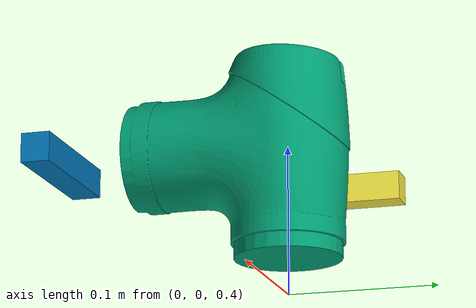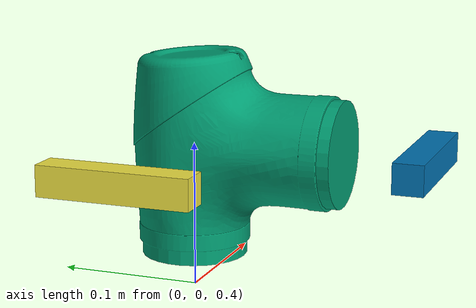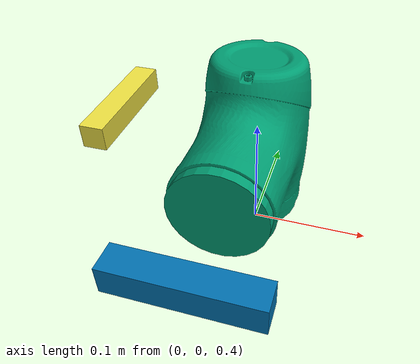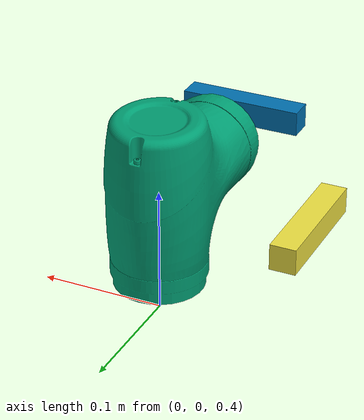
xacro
<robot
  name="elfin3" xmlns:xacro="http://www.ros.org/wiki/xacro">

  <xacro:include filename="$(find elfin_description)/urdf/materials.xacro" />

  <xacro:include filename="$(find elfin_description)/urdf/modules/modules.gazebo" />

  <xacro:include filename="$(find elfin_description)/urdf/modules/modules_transmission.xacro" />

  <xacro:property name="PI" value="3.1415926535897931"/>

  <xacro:property name="density" value="3.09"/>

  <link name="world"/>

  <joint name="world_base" type="fixed">
    <origin
      xyz="0 0 0"
      rpy="0 0 0" />
    <parent
      link="world" />
    <child
      link="elfin_base" />
  </joint>

  <link name="elfin_base"/>

  <joint name="elfin_module_base_joint" type="fixed">
    <origin
      xyz="0 0 0.5"
      rpy="0 0 0" />
    <parent
      link="elfin_base" />
    <child
      link="elfin_module_14" />
  </joint>

  <link
    name="elfin_module_14">
    <inertial>
      <origin
        xyz="-0.0158710385319 -0.0365214098995 4.94388107361e-07"
        rpy="0 0 0"/>
      <mass value="${0.807027243448*density}"/>
      <inertia
      ixx="${0.00193719*density}" ixy="${0.00047145*density}" ixz="${2e-08*density}"
      iyy="${0.00112857*density}" iyz="${-1.1e-07*density}"
      izz="${0.00245655*density}"/>
    </inertial>
    <visual>
      <origin
        xyz="0 0 0"
        rpy="0 0 0" />
      <geometry>
        <mesh
          filename="package://elfin_description/meshes/elfin3/elfin_link5.STL" />
      </geometry>
      <material
        name="metal"/>
    </visual>
    <collision>
      <origin
        xyz="0 0 0"
        rpy="0 0 0" />
      <geometry>
        <mesh
          filename="package://elfin_description/meshes/elfin3/elfin_link5.STL" />
      </geometry>
    </collision>
  </link>

  <link name="dummy_link1">
    <inertial>
      <origin
        xyz="0 0 0"
        rpy="0 0 0"/>
      <mass value="0.01"/>
      <inertia
      ixx="0.0001" ixy="0" ixz="0"
      iyy="0.0001" iyz="0"
      izz="0.0001"/>
    </inertial>

    <visual>
      <origin xyz="0 0 0" rpy="0 0 0"/>
      <geometry>
	<box size="0.02 0.1 0.02"/>
      </geometry>
      <material name="metal"/>
    </visual>

    <collision>
      <origin xyz="0 0 0" rpy="0 0 0"/>
      <geometry>
	    <box size="0.02 0.1 0.02"/>
      </geometry>
    </collision>
  </link>

  <joint
    name="elfin_module_joint1"
    type="revolute">
    <origin
      xyz="-0.12 0 0"
      rpy="0 ${-PI/2} 0" />
    <parent
      link="elfin_module_14" />
    <child
      link="dummy_link1" />
    <axis
      xyz="0 0 1" />
    <limit
      lower="-3.14"
      upper="3.14"
      effort="34"
      velocity="1.57" />
  </joint>

  <link name="dummy_link2">
    <inertial>
      <origin
        xyz="0 0 0"
        rpy="0 0 0"/>
      <mass value="0.01"/>
      <inertia
      ixx="0.0001" ixy="0" ixz="0"
      iyy="0.0001" iyz="0"
      izz="0.0001"/>
    </inertial>

    <visual>
      <origin xyz="0 0 0" rpy="0 0 0"/>
      <geometry>
	<box size="0.1 0.02 0.02"/>
      </geometry>
      <material name="metal"/>
    </visual>

    <collision>
      <origin xyz="0 0 0" rpy="0 0 0"/>
      <geometry>
	    <box size="0.1 0.02 0.02"/>
      </geometry>
    </collision>
  </link>

  <joint
    name="elfin_module_joint2"
    type="revolute">
    <origin
      xyz="0 -0.16 0"
      rpy="${PI/2} 0 0" />
    <parent
      link="elfin_module_14" />
    <child
      link="dummy_link2" />
    <axis
      xyz="0 0 1" />
    <limit
      lower="-3.14"
      upper="3.14"
      effort="34"
      velocity="1.57" />
  </joint>

</robot>
